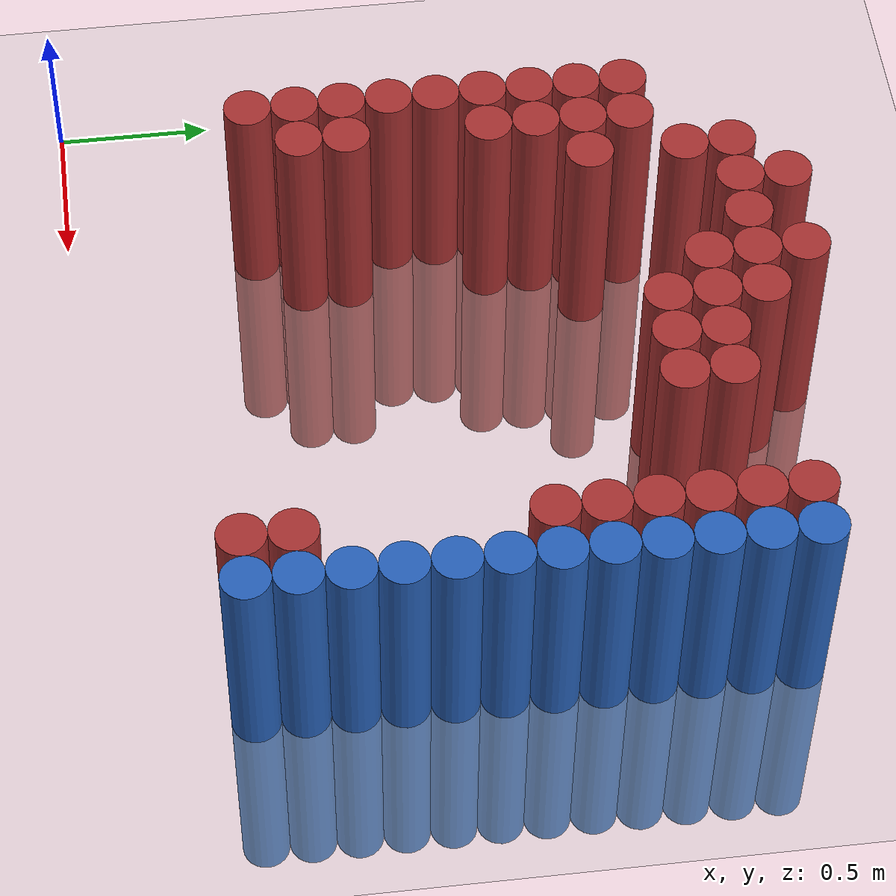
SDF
<sdf version="1.6">
 <world name="default">
  <model name="ground_plane">
   <static>1</static>
   <link name="link">
    <collision name="collision">
     <geometry><plane><normal>0 0 1</normal><size>100 100</size></plane></geometry>
     <surface><friction><ode><mu>100</mu><mu2>50</mu2></ode></friction></surface>
    </collision>
    <visual name="visual">
     <cast_shadows>0</cast_shadows>
     <geometry><plane><normal>0 0 1</normal><size>100 100</size></plane></geometry>
     <material>
      <script><uri>file://media/materials/scripts/gazebo.material</uri><name>Gazebo/Grey</name></script>
     </material>
    </visual>
   </link>
  </model>
  <model name="unit_cylinder_152">
   <static>1</static>
   <pose>0.625000 0.625000 0.000000 0.000000 0.000000 0.000000</pose>
   <link name="link">
    <inertial>
     <mass>1</mass>
     <inertia><ixx>0.145833</ixx><ixy>0</ixy><ixz>0</ixz><iyy>0.145833</iyy><iyz>0</iyz><izz>0.125</izz></inertia>
    </inertial>
    <collision name="collision">
     <geometry><cylinder><radius>0.075000</radius><length>1.5</length></cylinder></geometry>
    </collision>
    <visual name="visual">
     <geometry><cylinder><radius>0.075000</radius><length>1.5</length></cylinder></geometry>
     <material>
      <ambient>0.648000 0.192000 0.192000 1</ambient>
      <diffuse>0.648000 0.192000 0.192000 1</diffuse>
     </material>
     <material>
      <script><name>Gazebo/Grey</name><uri>file://media/materials/scripts/gazebo.material</uri></script>
     </material>
    </visual>
   </link>
  </model>
  <model name="unit_cylinder_153">
   <static>1</static>
   <pose>0.625000 0.775000 0.000000 0.000000 0.000000 0.000000</pose>
   <link name="link">
    <inertial>
     <mass>1</mass>
     <inertia><ixx>0.145833</ixx><ixy>0</ixy><ixz>0</ixz><iyy>0.145833</iyy><iyz>0</iyz><izz>0.125</izz></inertia>
    </inertial>
    <collision name="collision">
     <geometry><cylinder><radius>0.075000</radius><length>1.5</length></cylinder></geometry>
    </collision>
    <visual name="visual">
     <geometry><cylinder><radius>0.075000</radius><length>1.5</length></cylinder></geometry>
     <material>
      <ambient>0.648000 0.192000 0.192000 1</ambient>
      <diffuse>0.648000 0.192000 0.192000 1</diffuse>
     </material>
     <material>
      <script><name>Gazebo/Grey</name><uri>file://media/materials/scripts/gazebo.material</uri></script>
     </material>
    </visual>
   </link>
  </model>
  <model name="unit_cylinder_154">
   <static>1</static>
   <pose>0.625000 0.925000 0.000000 0.000000 0.000000 0.000000</pose>
   <link name="link">
    <inertial>
     <mass>1</mass>
     <inertia><ixx>0.145833</ixx><ixy>0</ixy><ixz>0</ixz><iyy>0.145833</iyy><iyz>0</iyz><izz>0.125</izz></inertia>
    </inertial>
    <collision name="collision">
     <geometry><cylinder><radius>0.075000</radius><length>1.5</length></cylinder></geometry>
    </collision>
    <visual name="visual">
     <geometry><cylinder><radius>0.075000</radius><length>1.5</length></cylinder></geometry>
     <material>
      <ambient>0.648000 0.192000 0.192000 1</ambient>
      <diffuse>0.648000 0.192000 0.192000 1</diffuse>
     </material>
     <material>
      <script><name>Gazebo/Grey</name><uri>file://media/materials/scripts/gazebo.material</uri></script>
     </material>
    </visual>
   </link>
  </model>
  <model name="unit_cylinder_155">
   <static>1</static>
   <pose>0.625000 1.075000 0.000000 0.000000 0.000000 0.000000</pose>
   <link name="link">
    <inertial>
     <mass>1</mass>
     <inertia><ixx>0.145833</ixx><ixy>0</ixy><ixz>0</ixz><iyy>0.145833</iyy><iyz>0</iyz><izz>0.125</izz></inertia>
    </inertial>
    <collision name="collision">
     <geometry><cylinder><radius>0.075000</radius><length>1.5</length></cylinder></geometry>
    </collision>
    <visual name="visual">
     <geometry><cylinder><radius>0.075000</radius><length>1.5</length></cylinder></geometry>
     <material>
      <ambient>0.648000 0.192000 0.192000 1</ambient>
      <diffuse>0.648000 0.192000 0.192000 1</diffuse>
     </material>
     <material>
      <script><name>Gazebo/Grey</name><uri>file://media/materials/scripts/gazebo.material</uri></script>
     </material>
    </visual>
   </link>
  </model>
  <model name="unit_cylinder_156">
   <static>1</static>
   <pose>0.625000 1.225000 0.000000 0.000000 0.000000 0.000000</pose>
   <link name="link">
    <inertial>
     <mass>1</mass>
     <inertia><ixx>0.145833</ixx><ixy>0</ixy><ixz>0</ixz><iyy>0.145833</iyy><iyz>0</iyz><izz>0.125</izz></inertia>
    </inertial>
    <collision name="collision">
     <geometry><cylinder><radius>0.075000</radius><length>1.5</length></cylinder></geometry>
    </collision>
    <visual name="visual">
     <geometry><cylinder><radius>0.075000</radius><length>1.5</length></cylinder></geometry>
     <material>
      <ambient>0.648000 0.192000 0.192000 1</ambient>
      <diffuse>0.648000 0.192000 0.192000 1</diffuse>
     </material>
     <material>
      <script><name>Gazebo/Grey</name><uri>file://media/materials/scripts/gazebo.material</uri></script>
     </material>
    </visual>
   </link>
  </model>
  <model name="unit_cylinder_157">
   <static>1</static>
   <pose>0.625000 1.375000 0.000000 0.000000 0.000000 0.000000</pose>
   <link name="link">
    <inertial>
     <mass>1</mass>
     <inertia><ixx>0.145833</ixx><ixy>0</ixy><ixz>0</ixz><iyy>0.145833</iyy><iyz>0</iyz><izz>0.125</izz></inertia>
    </inertial>
    <collision name="collision">
     <geometry><cylinder><radius>0.075000</radius><length>1.5</length></cylinder></geometry>
    </collision>
    <visual name="visual">
     <geometry><cylinder><radius>0.075000</radius><length>1.5</length></cylinder></geometry>
     <material>
      <ambient>0.648000 0.192000 0.192000 1</ambient>
      <diffuse>0.648000 0.192000 0.192000 1</diffuse>
     </material>
     <material>
      <script><name>Gazebo/Grey</name><uri>file://media/materials/scripts/gazebo.material</uri></script>
     </material>
    </visual>
   </link>
  </model>
  <model name="unit_cylinder_158">
   <static>1</static>
   <pose>0.625000 1.525000 0.000000 0.000000 0.000000 0.000000</pose>
   <link name="link">
    <inertial>
     <mass>1</mass>
     <inertia><ixx>0.145833</ixx><ixy>0</ixy><ixz>0</ixz><iyy>0.145833</iyy><iyz>0</iyz><izz>0.125</izz></inertia>
    </inertial>
    <collision name="collision">
     <geometry><cylinder><radius>0.075000</radius><length>1.5</length></cylinder></geometry>
    </collision>
    <visual name="visual">
     <geometry><cylinder><radius>0.075000</radius><length>1.5</length></cylinder></geometry>
     <material>
      <ambient>0.648000 0.192000 0.192000 1</ambient>
      <diffuse>0.648000 0.192000 0.192000 1</diffuse>
     </material>
     <material>
      <script><name>Gazebo/Grey</name><uri>file://media/materials/scripts/gazebo.material</uri></script>
     </material>
    </visual>
   </link>
  </model>
  <model name="unit_cylinder_159">
   <static>1</static>
   <pose>0.625000 1.675000 0.000000 0.000000 0.000000 0.000000</pose>
   <link name="link">
    <inertial>
     <mass>1</mass>
     <inertia><ixx>0.145833</ixx><ixy>0</ixy><ixz>0</ixz><iyy>0.145833</iyy><iyz>0</iyz><izz>0.125</izz></inertia>
    </inertial>
    <collision name="collision">
     <geometry><cylinder><radius>0.075000</radius><length>1.5</length></cylinder></geometry>
    </collision>
    <visual name="visual">
     <geometry><cylinder><radius>0.075000</radius><length>1.5</length></cylinder></geometry>
     <material>
      <ambient>0.648000 0.192000 0.192000 1</ambient>
      <diffuse>0.648000 0.192000 0.192000 1</diffuse>
     </material>
     <material>
      <script><name>Gazebo/Grey</name><uri>file://media/materials/scripts/gazebo.material</uri></script>
     </material>
    </visual>
   </link>
  </model>
  <model name="unit_cylinder_160">
   <static>1</static>
   <pose>0.625000 1.825000 0.000000 0.000000 0.000000 0.000000</pose>
   <link name="link">
    <inertial>
     <mass>1</mass>
     <inertia><ixx>0.145833</ixx><ixy>0</ixy><ixz>0</ixz><iyy>0.145833</iyy><iyz>0</iyz><izz>0.125</izz></inertia>
    </inertial>
    <collision name="collision">
     <geometry><cylinder><radius>0.075000</radius><length>1.5</length></cylinder></geometry>
    </collision>
    <visual name="visual">
     <geometry><cylinder><radius>0.075000</radius><length>1.5</length></cylinder></geometry>
     <material>
      <ambient>0.648000 0.192000 0.192000 1</ambient>
      <diffuse>0.648000 0.192000 0.192000 1</diffuse>
     </material>
     <material>
      <script><name>Gazebo/Grey</name><uri>file://media/materials/scripts/gazebo.material</uri></script>
     </material>
    </visual>
   </link>
  </model>
  <model name="unit_cylinder_161">
   <static>1</static>
   <pose>0.775000 0.775000 0.000000 0.000000 0.000000 0.000000</pose>
   <link name="link">
    <inertial>
     <mass>1</mass>
     <inertia><ixx>0.145833</ixx><ixy>0</ixy><ixz>0</ixz><iyy>0.145833</iyy><iyz>0</iyz><izz>0.125</izz></inertia>
    </inertial>
    <collision name="collision">
     <geometry><cylinder><radius>0.075000</radius><length>1.5</length></cylinder></geometry>
    </collision>
    <visual name="visual">
     <geometry><cylinder><radius>0.075000</radius><length>1.5</length></cylinder></geometry>
     <material>
      <ambient>0.648000 0.192000 0.192000 1</ambient>
      <diffuse>0.648000 0.192000 0.192000 1</diffuse>
     </material>
     <material>
      <script><name>Gazebo/Grey</name><uri>file://media/materials/scripts/gazebo.material</uri></script>
     </material>
    </visual>
   </link>
  </model>
  <model name="unit_cylinder_162">
   <static>1</static>
   <pose>0.775000 0.925000 0.000000 0.000000 0.000000 0.000000</pose>
   <link name="link">
    <inertial>
     <mass>1</mass>
     <inertia><ixx>0.145833</ixx><ixy>0</ixy><ixz>0</ixz><iyy>0.145833</iyy><iyz>0</iyz><izz>0.125</izz></inertia>
    </inertial>
    <collision name="collision">
     <geometry><cylinder><radius>0.075000</radius><length>1.5</length></cylinder></geometry>
    </collision>
    <visual name="visual">
     <geometry><cylinder><radius>0.075000</radius><length>1.5</length></cylinder></geometry>
     <material>
      <ambient>0.648000 0.192000 0.192000 1</ambient>
      <diffuse>0.648000 0.192000 0.192000 1</diffuse>
     </material>
     <material>
      <script><name>Gazebo/Grey</name><uri>file://media/materials/scripts/gazebo.material</uri></script>
     </material>
    </visual>
   </link>
  </model>
  <model name="unit_cylinder_163">
   <static>1</static>
   <pose>0.775000 1.375000 0.000000 0.000000 0.000000 0.000000</pose>
   <link name="link">
    <inertial>
     <mass>1</mass>
     <inertia><ixx>0.145833</ixx><ixy>0</ixy><ixz>0</ixz><iyy>0.145833</iyy><iyz>0</iyz><izz>0.125</izz></inertia>
    </inertial>
    <collision name="collision">
     <geometry><cylinder><radius>0.075000</radius><length>1.5</length></cylinder></geometry>
    </collision>
    <visual name="visual">
     <geometry><cylinder><radius>0.075000</radius><length>1.5</length></cylinder></geometry>
     <material>
      <ambient>0.648000 0.192000 0.192000 1</ambient>
      <diffuse>0.648000 0.192000 0.192000 1</diffuse>
     </material>
     <material>
      <script><name>Gazebo/Grey</name><uri>file://media/materials/scripts/gazebo.material</uri></script>
     </material>
    </visual>
   </link>
  </model>
  <model name="unit_cylinder_164">
   <static>1</static>
   <pose>0.775000 1.525000 0.000000 0.000000 0.000000 0.000000</pose>
   <link name="link">
    <inertial>
     <mass>1</mass>
     <inertia><ixx>0.145833</ixx><ixy>0</ixy><ixz>0</ixz><iyy>0.145833</iyy><iyz>0</iyz><izz>0.125</izz></inertia>
    </inertial>
    <collision name="collision">
     <geometry><cylinder><radius>0.075000</radius><length>1.5</length></cylinder></geometry>
    </collision>
    <visual name="visual">
     <geometry><cylinder><radius>0.075000</radius><length>1.5</length></cylinder></geometry>
     <material>
      <ambient>0.648000 0.192000 0.192000 1</ambient>
      <diffuse>0.648000 0.192000 0.192000 1</diffuse>
     </material>
     <material>
      <script><name>Gazebo/Grey</name><uri>file://media/materials/scripts/gazebo.material</uri></script>
     </material>
    </visual>
   </link>
  </model>
  <model name="unit_cylinder_165">
   <static>1</static>
   <pose>0.775000 1.675000 0.000000 0.000000 0.000000 0.000000</pose>
   <link name="link">
    <inertial>
     <mass>1</mass>
     <inertia><ixx>0.145833</ixx><ixy>0</ixy><ixz>0</ixz><iyy>0.145833</iyy><iyz>0</iyz><izz>0.125</izz></inertia>
    </inertial>
    <collision name="collision">
     <geometry><cylinder><radius>0.075000</radius><length>1.5</length></cylinder></geometry>
    </collision>
    <visual name="visual">
     <geometry><cylinder><radius>0.075000</radius><length>1.5</length></cylinder></geometry>
     <material>
      <ambient>0.648000 0.192000 0.192000 1</ambient>
      <diffuse>0.648000 0.192000 0.192000 1</diffuse>
     </material>
     <material>
      <script><name>Gazebo/Grey</name><uri>file://media/materials/scripts/gazebo.material</uri></script>
     </material>
    </visual>
   </link>
  </model>
  <model name="unit_cylinder_166">
   <static>1</static>
   <pose>0.775000 1.825000 0.000000 0.000000 0.000000 0.000000</pose>
   <link name="link">
    <inertial>
     <mass>1</mass>
     <inertia><ixx>0.145833</ixx><ixy>0</ixy><ixz>0</ixz><iyy>0.145833</iyy><iyz>0</iyz><izz>0.125</izz></inertia>
    </inertial>
    <collision name="collision">
     <geometry><cylinder><radius>0.075000</radius><length>1.5</length></cylinder></geometry>
    </collision>
    <visual name="visual">
     <geometry><cylinder><radius>0.075000</radius><length>1.5</length></cylinder></geometry>
     <material>
      <ambient>0.648000 0.192000 0.192000 1</ambient>
      <diffuse>0.648000 0.192000 0.192000 1</diffuse>
     </material>
     <material>
      <script><name>Gazebo/Grey</name><uri>file://media/materials/scripts/gazebo.material</uri></script>
     </material>
    </visual>
   </link>
  </model>
  <model name="unit_cylinder_167">
   <static>1</static>
   <pose>0.925000 1.675000 0.000000 0.000000 0.000000 0.000000</pose>
   <link name="link">
    <inertial>
     <mass>1</mass>
     <inertia><ixx>0.145833</ixx><ixy>0</ixy><ixz>0</ixz><iyy>0.145833</iyy><iyz>0</iyz><izz>0.125</izz></inertia>
    </inertial>
    <collision name="collision">
     <geometry><cylinder><radius>0.075000</radius><length>1.5</length></cylinder></geometry>
    </collision>
    <visual name="visual">
     <geometry><cylinder><radius>0.075000</radius><length>1.5</length></cylinder></geometry>
     <material>
      <ambient>0.648000 0.192000 0.192000 1</ambient>
      <diffuse>0.648000 0.192000 0.192000 1</diffuse>
     </material>
     <material>
      <script><name>Gazebo/Grey</name><uri>file://media/materials/scripts/gazebo.material</uri></script>
     </material>
    </visual>
   </link>
  </model>
  <model name="unit_cylinder_168">
   <static>1</static>
   <pose>0.925000 1.975000 0.000000 0.000000 0.000000 0.000000</pose>
   <link name="link">
    <inertial>
     <mass>1</mass>
     <inertia><ixx>0.145833</ixx><ixy>0</ixy><ixz>0</ixz><iyy>0.145833</iyy><iyz>0</iyz><izz>0.125</izz></inertia>
    </inertial>
    <collision name="collision">
     <geometry><cylinder><radius>0.075000</radius><length>1.5</length></cylinder></geometry>
    </collision>
    <visual name="visual">
     <geometry><cylinder><radius>0.075000</radius><length>1.5</length></cylinder></geometry>
     <material>
      <ambient>0.648000 0.192000 0.192000 1</ambient>
      <diffuse>0.648000 0.192000 0.192000 1</diffuse>
     </material>
     <material>
      <script><name>Gazebo/Grey</name><uri>file://media/materials/scripts/gazebo.material</uri></script>
     </material>
    </visual>
   </link>
  </model>
  <model name="unit_cylinder_169">
   <static>1</static>
   <pose>0.925000 2.125000 0.000000 0.000000 0.000000 0.000000</pose>
   <link name="link">
    <inertial>
     <mass>1</mass>
     <inertia><ixx>0.145833</ixx><ixy>0</ixy><ixz>0</ixz><iyy>0.145833</iyy><iyz>0</iyz><izz>0.125</izz></inertia>
    </inertial>
    <collision name="collision">
     <geometry><cylinder><radius>0.075000</radius><length>1.5</length></cylinder></geometry>
    </collision>
    <visual name="visual">
     <geometry><cylinder><radius>0.075000</radius><length>1.5</length></cylinder></geometry>
     <material>
      <ambient>0.648000 0.192000 0.192000 1</ambient>
      <diffuse>0.648000 0.192000 0.192000 1</diffuse>
     </material>
     <material>
      <script><name>Gazebo/Grey</name><uri>file://media/materials/scripts/gazebo.material</uri></script>
     </material>
    </visual>
   </link>
  </model>
  <model name="unit_cylinder_170">
   <static>1</static>
   <pose>1.075000 2.125000 0.000000 0.000000 0.000000 0.000000</pose>
   <link name="link">
    <inertial>
     <mass>1</mass>
     <inertia><ixx>0.145833</ixx><ixy>0</ixy><ixz>0</ixz><iyy>0.145833</iyy><iyz>0</iyz><izz>0.125</izz></inertia>
    </inertial>
    <collision name="collision">
     <geometry><cylinder><radius>0.075000</radius><length>1.5</length></cylinder></geometry>
    </collision>
    <visual name="visual">
     <geometry><cylinder><radius>0.075000</radius><length>1.5</length></cylinder></geometry>
     <material>
      <ambient>0.648000 0.192000 0.192000 1</ambient>
      <diffuse>0.648000 0.192000 0.192000 1</diffuse>
     </material>
     <material>
      <script><name>Gazebo/Grey</name><uri>file://media/materials/scripts/gazebo.material</uri></script>
     </material>
    </visual>
   </link>
  </model>
  <model name="unit_cylinder_171">
   <static>1</static>
   <pose>1.075000 2.275000 0.000000 0.000000 0.000000 0.000000</pose>
   <link name="link">
    <inertial>
     <mass>1</mass>
     <inertia><ixx>0.145833</ixx><ixy>0</ixy><ixz>0</ixz><iyy>0.145833</iyy><iyz>0</iyz><izz>0.125</izz></inertia>
    </inertial>
    <collision name="collision">
     <geometry><cylinder><radius>0.075000</radius><length>1.5</length></cylinder></geometry>
    </collision>
    <visual name="visual">
     <geometry><cylinder><radius>0.075000</radius><length>1.5</length></cylinder></geometry>
     <material>
      <ambient>0.648000 0.192000 0.192000 1</ambient>
      <diffuse>0.648000 0.192000 0.192000 1</diffuse>
     </material>
     <material>
      <script><name>Gazebo/Grey</name><uri>file://media/materials/scripts/gazebo.material</uri></script>
     </material>
    </visual>
   </link>
  </model>
  <model name="unit_cylinder_178">
   <static>1</static>
   <pose>1.225000 2.125000 0.000000 0.000000 0.000000 0.000000</pose>
   <link name="link">
    <inertial>
     <mass>1</mass>
     <inertia><ixx>0.145833</ixx><ixy>0</ixy><ixz>0</ixz><iyy>0.145833</iyy><iyz>0</iyz><izz>0.125</izz></inertia>
    </inertial>
    <collision name="collision">
     <geometry><cylinder><radius>0.075000</radius><length>1.5</length></cylinder></geometry>
    </collision>
    <visual name="visual">
     <geometry><cylinder><radius>0.075000</radius><length>1.5</length></cylinder></geometry>
     <material>
      <ambient>0.648000 0.192000 0.192000 1</ambient>
      <diffuse>0.648000 0.192000 0.192000 1</diffuse>
     </material>
     <material>
      <script><name>Gazebo/Grey</name><uri>file://media/materials/scripts/gazebo.material</uri></script>
     </material>
    </visual>
   </link>
  </model>
  <model name="unit_cylinder_185">
   <static>1</static>
   <pose>1.375000 1.975000 0.000000 0.000000 0.000000 0.000000</pose>
   <link name="link">
    <inertial>
     <mass>1</mass>
     <inertia><ixx>0.145833</ixx><ixy>0</ixy><ixz>0</ixz><iyy>0.145833</iyy><iyz>0</iyz><izz>0.125</izz></inertia>
    </inertial>
    <collision name="collision">
     <geometry><cylinder><radius>0.075000</radius><length>1.5</length></cylinder></geometry>
    </collision>
    <visual name="visual">
     <geometry><cylinder><radius>0.075000</radius><length>1.5</length></cylinder></geometry>
     <material>
      <ambient>0.648000 0.192000 0.192000 1</ambient>
      <diffuse>0.648000 0.192000 0.192000 1</diffuse>
     </material>
     <material>
      <script><name>Gazebo/Grey</name><uri>file://media/materials/scripts/gazebo.material</uri></script>
     </material>
    </visual>
   </link>
  </model>
  <model name="unit_cylinder_186">
   <static>1</static>
   <pose>1.375000 2.125000 0.000000 0.000000 0.000000 0.000000</pose>
   <link name="link">
    <inertial>
     <mass>1</mass>
     <inertia><ixx>0.145833</ixx><ixy>0</ixy><ixz>0</ixz><iyy>0.145833</iyy><iyz>0</iyz><izz>0.125</izz></inertia>
    </inertial>
    <collision name="collision">
     <geometry><cylinder><radius>0.075000</radius><length>1.5</length></cylinder></geometry>
    </collision>
    <visual name="visual">
     <geometry><cylinder><radius>0.075000</radius><length>1.5</length></cylinder></geometry>
     <material>
      <ambient>0.648000 0.192000 0.192000 1</ambient>
      <diffuse>0.648000 0.192000 0.192000 1</diffuse>
     </material>
     <material>
      <script><name>Gazebo/Grey</name><uri>file://media/materials/scripts/gazebo.material</uri></script>
     </material>
    </visual>
   </link>
  </model>
  <model name="unit_cylinder_187">
   <static>1</static>
   <pose>1.375000 2.275000 0.000000 0.000000 0.000000 0.000000</pose>
   <link name="link">
    <inertial>
     <mass>1</mass>
     <inertia><ixx>0.145833</ixx><ixy>0</ixy><ixz>0</ixz><iyy>0.145833</iyy><iyz>0</iyz><izz>0.125</izz></inertia>
    </inertial>
    <collision name="collision">
     <geometry><cylinder><radius>0.075000</radius><length>1.5</length></cylinder></geometry>
    </collision>
    <visual name="visual">
     <geometry><cylinder><radius>0.075000</radius><length>1.5</length></cylinder></geometry>
     <material>
      <ambient>0.648000 0.192000 0.192000 1</ambient>
      <diffuse>0.648000 0.192000 0.192000 1</diffuse>
     </material>
     <material>
      <script><name>Gazebo/Grey</name><uri>file://media/materials/scripts/gazebo.material</uri></script>
     </material>
    </visual>
   </link>
  </model>
  <model name="unit_cylinder_191">
   <static>1</static>
   <pose>1.525000 1.825000 0.000000 0.000000 0.000000 0.000000</pose>
   <link name="link">
    <inertial>
     <mass>1</mass>
     <inertia><ixx>0.145833</ixx><ixy>0</ixy><ixz>0</ixz><iyy>0.145833</iyy><iyz>0</iyz><izz>0.125</izz></inertia>
    </inertial>
    <collision name="collision">
     <geometry><cylinder><radius>0.075000</radius><length>1.5</length></cylinder></geometry>
    </collision>
    <visual name="visual">
     <geometry><cylinder><radius>0.075000</radius><length>1.5</length></cylinder></geometry>
     <material>
      <ambient>0.648000 0.192000 0.192000 1</ambient>
      <diffuse>0.648000 0.192000 0.192000 1</diffuse>
     </material>
     <material>
      <script><name>Gazebo/Grey</name><uri>file://media/materials/scripts/gazebo.material</uri></script>
     </material>
    </visual>
   </link>
  </model>
  <model name="unit_cylinder_192">
   <static>1</static>
   <pose>1.525000 1.975000 0.000000 0.000000 0.000000 0.000000</pose>
   <link name="link">
    <inertial>
     <mass>1</mass>
     <inertia><ixx>0.145833</ixx><ixy>0</ixy><ixz>0</ixz><iyy>0.145833</iyy><iyz>0</iyz><izz>0.125</izz></inertia>
    </inertial>
    <collision name="collision">
     <geometry><cylinder><radius>0.075000</radius><length>1.5</length></cylinder></geometry>
    </collision>
    <visual name="visual">
     <geometry><cylinder><radius>0.075000</radius><length>1.5</length></cylinder></geometry>
     <material>
      <ambient>0.648000 0.192000 0.192000 1</ambient>
      <diffuse>0.648000 0.192000 0.192000 1</diffuse>
     </material>
     <material>
      <script><name>Gazebo/Grey</name><uri>file://media/materials/scripts/gazebo.material</uri></script>
     </material>
    </visual>
   </link>
  </model>
  <model name="unit_cylinder_193">
   <static>1</static>
   <pose>1.525000 2.125000 0.000000 0.000000 0.000000 0.000000</pose>
   <link name="link">
    <inertial>
     <mass>1</mass>
     <inertia><ixx>0.145833</ixx><ixy>0</ixy><ixz>0</ixz><iyy>0.145833</iyy><iyz>0</iyz><izz>0.125</izz></inertia>
    </inertial>
    <collision name="collision">
     <geometry><cylinder><radius>0.075000</radius><length>1.5</length></cylinder></geometry>
    </collision>
    <visual name="visual">
     <geometry><cylinder><radius>0.075000</radius><length>1.5</length></cylinder></geometry>
     <material>
      <ambient>0.648000 0.192000 0.192000 1</ambient>
      <diffuse>0.648000 0.192000 0.192000 1</diffuse>
     </material>
     <material>
      <script><name>Gazebo/Grey</name><uri>file://media/materials/scripts/gazebo.material</uri></script>
     </material>
    </visual>
   </link>
  </model>
  <model name="unit_cylinder_194">
   <static>1</static>
   <pose>1.675000 1.825000 0.000000 0.000000 0.000000 0.000000</pose>
   <link name="link">
    <inertial>
     <mass>1</mass>
     <inertia><ixx>0.145833</ixx><ixy>0</ixy><ixz>0</ixz><iyy>0.145833</iyy><iyz>0</iyz><izz>0.125</izz></inertia>
    </inertial>
    <collision name="collision">
     <geometry><cylinder><radius>0.075000</radius><length>1.5</length></cylinder></geometry>
    </collision>
    <visual name="visual">
     <geometry><cylinder><radius>0.075000</radius><length>1.5</length></cylinder></geometry>
     <material>
      <ambient>0.648000 0.192000 0.192000 1</ambient>
      <diffuse>0.648000 0.192000 0.192000 1</diffuse>
     </material>
     <material>
      <script><name>Gazebo/Grey</name><uri>file://media/materials/scripts/gazebo.material</uri></script>
     </material>
    </visual>
   </link>
  </model>
  <model name="unit_cylinder_195">
   <static>1</static>
   <pose>1.675000 1.975000 0.000000 0.000000 0.000000 0.000000</pose>
   <link name="link">
    <inertial>
     <mass>1</mass>
     <inertia><ixx>0.145833</ixx><ixy>0</ixy><ixz>0</ixz><iyy>0.145833</iyy><iyz>0</iyz><izz>0.125</izz></inertia>
    </inertial>
    <collision name="collision">
     <geometry><cylinder><radius>0.075000</radius><length>1.5</length></cylinder></geometry>
    </collision>
    <visual name="visual">
     <geometry><cylinder><radius>0.075000</radius><length>1.5</length></cylinder></geometry>
     <material>
      <ambient>0.648000 0.192000 0.192000 1</ambient>
      <diffuse>0.648000 0.192000 0.192000 1</diffuse>
     </material>
     <material>
      <script><name>Gazebo/Grey</name><uri>file://media/materials/scripts/gazebo.material</uri></script>
     </material>
    </visual>
   </link>
  </model>
  <model name="unit_cylinder_196">
   <static>1</static>
   <pose>1.825000 1.825000 0.000000 0.000000 0.000000 0.000000</pose>
   <link name="link">
    <inertial>
     <mass>1</mass>
     <inertia><ixx>0.145833</ixx><ixy>0</ixy><ixz>0</ixz><iyy>0.145833</iyy><iyz>0</iyz><izz>0.125</izz></inertia>
    </inertial>
    <collision name="collision">
     <geometry><cylinder><radius>0.075000</radius><length>1.5</length></cylinder></geometry>
    </collision>
    <visual name="visual">
     <geometry><cylinder><radius>0.075000</radius><length>1.5</length></cylinder></geometry>
     <material>
      <ambient>0.648000 0.192000 0.192000 1</ambient>
      <diffuse>0.648000 0.192000 0.192000 1</diffuse>
     </material>
     <material>
      <script><name>Gazebo/Grey</name><uri>file://media/materials/scripts/gazebo.material</uri></script>
     </material>
    </visual>
   </link>
  </model>
  <model name="unit_cylinder_197">
   <static>1</static>
   <pose>1.825000 1.975000 0.000000 0.000000 0.000000 0.000000</pose>
   <link name="link">
    <inertial>
     <mass>1</mass>
     <inertia><ixx>0.145833</ixx><ixy>0</ixy><ixz>0</ixz><iyy>0.145833</iyy><iyz>0</iyz><izz>0.125</izz></inertia>
    </inertial>
    <collision name="collision">
     <geometry><cylinder><radius>0.075000</radius><length>1.5</length></cylinder></geometry>
    </collision>
    <visual name="visual">
     <geometry><cylinder><radius>0.075000</radius><length>1.5</length></cylinder></geometry>
     <material>
      <ambient>0.648000 0.192000 0.192000 1</ambient>
      <diffuse>0.648000 0.192000 0.192000 1</diffuse>
     </material>
     <material>
      <script><name>Gazebo/Grey</name><uri>file://media/materials/scripts/gazebo.material</uri></script>
     </material>
    </visual>
   </link>
  </model>
  <model name="unit_cylinder_214">
   <static>1</static>
   <pose>2.275000 0.475000 0.000000 0.000000 0.000000 0.000000</pose>
   <link name="link">
    <inertial>
     <mass>1</mass>
     <inertia><ixx>0.145833</ixx><ixy>0</ixy><ixz>0</ixz><iyy>0.145833</iyy><iyz>0</iyz><izz>0.125</izz></inertia>
    </inertial>
    <collision name="collision">
     <geometry><cylinder><radius>0.075000</radius><length>1.5</length></cylinder></geometry>
    </collision>
    <visual name="visual">
     <geometry><cylinder><radius>0.075000</radius><length>1.5</length></cylinder></geometry>
     <material>
      <ambient>0.648000 0.192000 0.192000 1</ambient>
      <diffuse>0.648000 0.192000 0.192000 1</diffuse>
     </material>
     <material>
      <script><name>Gazebo/Grey</name><uri>file://media/materials/scripts/gazebo.material</uri></script>
     </material>
    </visual>
   </link>
  </model>
  <model name="unit_cylinder_215">
   <static>1</static>
   <pose>2.275000 0.625000 0.000000 0.000000 0.000000 0.000000</pose>
   <link name="link">
    <inertial>
     <mass>1</mass>
     <inertia><ixx>0.145833</ixx><ixy>0</ixy><ixz>0</ixz><iyy>0.145833</iyy><iyz>0</iyz><izz>0.125</izz></inertia>
    </inertial>
    <collision name="collision">
     <geometry><cylinder><radius>0.075000</radius><length>1.5</length></cylinder></geometry>
    </collision>
    <visual name="visual">
     <geometry><cylinder><radius>0.075000</radius><length>1.5</length></cylinder></geometry>
     <material>
      <ambient>0.648000 0.192000 0.192000 1</ambient>
      <diffuse>0.648000 0.192000 0.192000 1</diffuse>
     </material>
     <material>
      <script><name>Gazebo/Grey</name><uri>file://media/materials/scripts/gazebo.material</uri></script>
     </material>
    </visual>
   </link>
  </model>
  <model name="unit_cylinder_216">
   <static>1</static>
   <pose>2.275000 1.375000 0.000000 0.000000 0.000000 0.000000</pose>
   <link name="link">
    <inertial>
     <mass>1</mass>
     <inertia><ixx>0.145833</ixx><ixy>0</ixy><ixz>0</ixz><iyy>0.145833</iyy><iyz>0</iyz><izz>0.125</izz></inertia>
    </inertial>
    <collision name="collision">
     <geometry><cylinder><radius>0.075000</radius><length>1.5</length></cylinder></geometry>
    </collision>
    <visual name="visual">
     <geometry><cylinder><radius>0.075000</radius><length>1.5</length></cylinder></geometry>
     <material>
      <ambient>0.648000 0.192000 0.192000 1</ambient>
      <diffuse>0.648000 0.192000 0.192000 1</diffuse>
     </material>
     <material>
      <script><name>Gazebo/Grey</name><uri>file://media/materials/scripts/gazebo.material</uri></script>
     </material>
    </visual>
   </link>
  </model>
  <model name="unit_cylinder_217">
   <static>1</static>
   <pose>2.275000 1.525000 0.000000 0.000000 0.000000 0.000000</pose>
   <link name="link">
    <inertial>
     <mass>1</mass>
     <inertia><ixx>0.145833</ixx><ixy>0</ixy><ixz>0</ixz><iyy>0.145833</iyy><iyz>0</iyz><izz>0.125</izz></inertia>
    </inertial>
    <collision name="collision">
     <geometry><cylinder><radius>0.075000</radius><length>1.5</length></cylinder></geometry>
    </collision>
    <visual name="visual">
     <geometry><cylinder><radius>0.075000</radius><length>1.5</length></cylinder></geometry>
     <material>
      <ambient>0.648000 0.192000 0.192000 1</ambient>
      <diffuse>0.648000 0.192000 0.192000 1</diffuse>
     </material>
     <material>
      <script><name>Gazebo/Grey</name><uri>file://media/materials/scripts/gazebo.material</uri></script>
     </material>
    </visual>
   </link>
  </model>
  <model name="unit_cylinder_218">
   <static>1</static>
   <pose>2.275000 1.675000 0.000000 0.000000 0.000000 0.000000</pose>
   <link name="link">
    <inertial>
     <mass>1</mass>
     <inertia><ixx>0.145833</ixx><ixy>0</ixy><ixz>0</ixz><iyy>0.145833</iyy><iyz>0</iyz><izz>0.125</izz></inertia>
    </inertial>
    <collision name="collision">
     <geometry><cylinder><radius>0.075000</radius><length>1.5</length></cylinder></geometry>
    </collision>
    <visual name="visual">
     <geometry><cylinder><radius>0.075000</radius><length>1.5</length></cylinder></geometry>
     <material>
      <ambient>0.648000 0.192000 0.192000 1</ambient>
      <diffuse>0.648000 0.192000 0.192000 1</diffuse>
     </material>
     <material>
      <script><name>Gazebo/Grey</name><uri>file://media/materials/scripts/gazebo.material</uri></script>
     </material>
    </visual>
   </link>
  </model>
  <model name="unit_cylinder_219">
   <static>1</static>
   <pose>2.275000 1.825000 0.000000 0.000000 0.000000 0.000000</pose>
   <link name="link">
    <inertial>
     <mass>1</mass>
     <inertia><ixx>0.145833</ixx><ixy>0</ixy><ixz>0</ixz><iyy>0.145833</iyy><iyz>0</iyz><izz>0.125</izz></inertia>
    </inertial>
    <collision name="collision">
     <geometry><cylinder><radius>0.075000</radius><length>1.5</length></cylinder></geometry>
    </collision>
    <visual name="visual">
     <geometry><cylinder><radius>0.075000</radius><length>1.5</length></cylinder></geometry>
     <material>
      <ambient>0.648000 0.192000 0.192000 1</ambient>
      <diffuse>0.648000 0.192000 0.192000 1</diffuse>
     </material>
     <material>
      <script><name>Gazebo/Grey</name><uri>file://media/materials/scripts/gazebo.material</uri></script>
     </material>
    </visual>
   </link>
  </model>
  <model name="unit_cylinder_220">
   <static>1</static>
   <pose>2.275000 1.975000 0.000000 0.000000 0.000000 0.000000</pose>
   <link name="link">
    <inertial>
     <mass>1</mass>
     <inertia><ixx>0.145833</ixx><ixy>0</ixy><ixz>0</ixz><iyy>0.145833</iyy><iyz>0</iyz><izz>0.125</izz></inertia>
    </inertial>
    <collision name="collision">
     <geometry><cylinder><radius>0.075000</radius><length>1.5</length></cylinder></geometry>
    </collision>
    <visual name="visual">
     <geometry><cylinder><radius>0.075000</radius><length>1.5</length></cylinder></geometry>
     <material>
      <ambient>0.648000 0.192000 0.192000 1</ambient>
      <diffuse>0.648000 0.192000 0.192000 1</diffuse>
     </material>
     <material>
      <script><name>Gazebo/Grey</name><uri>file://media/materials/scripts/gazebo.material</uri></script>
     </material>
    </visual>
   </link>
  </model>
  <model name="unit_cylinder_221">
   <static>1</static>
   <pose>2.275000 2.125000 0.000000 0.000000 0.000000 0.000000</pose>
   <link name="link">
    <inertial>
     <mass>1</mass>
     <inertia><ixx>0.145833</ixx><ixy>0</ixy><ixz>0</ixz><iyy>0.145833</iyy><iyz>0</iyz><izz>0.125</izz></inertia>
    </inertial>
    <collision name="collision">
     <geometry><cylinder><radius>0.075000</radius><length>1.5</length></cylinder></geometry>
    </collision>
    <visual name="visual">
     <geometry><cylinder><radius>0.075000</radius><length>1.5</length></cylinder></geometry>
     <material>
      <ambient>0.648000 0.192000 0.192000 1</ambient>
      <diffuse>0.648000 0.192000 0.192000 1</diffuse>
     </material>
     <material>
      <script><name>Gazebo/Grey</name><uri>file://media/materials/scripts/gazebo.material</uri></script>
     </material>
    </visual>
   </link>
  </model>
  <model name="unit_cylinder_231">
   <static>1</static>
   <pose>2.425000 0.475000 0.000000 0.000000 0.000000 0.000000</pose>
   <link name="link">
    <inertial>
     <mass>1</mass>
     <inertia><ixx>0.145833</ixx><ixy>0</ixy><ixz>0</ixz><iyy>0.145833</iyy><iyz>0</iyz><izz>0.125</izz></inertia>
    </inertial>
    <collision name="collision">
     <geometry><cylinder><radius>0.075000</radius><length>1.5</length></cylinder></geometry>
    </collision>
    <visual name="visual">
     <geometry><cylinder><radius>0.075000</radius><length>1.5</length></cylinder></geometry>
     <material>
      <ambient>0.152000 0.379000 0.720000 1</ambient>
      <diffuse>0.152000 0.379000 0.720000 1</diffuse>
     </material>
     <material>
      <script><name>Gazebo/Grey</name><uri>file://media/materials/scripts/gazebo.material</uri></script>
     </material>
    </visual>
   </link>
  </model>
  <model name="unit_cylinder_232">
   <static>1</static>
   <pose>2.425000 0.625000 0.000000 0.000000 0.000000 0.000000</pose>
   <link name="link">
    <inertial>
     <mass>1</mass>
     <inertia><ixx>0.145833</ixx><ixy>0</ixy><ixz>0</ixz><iyy>0.145833</iyy><iyz>0</iyz><izz>0.125</izz></inertia>
    </inertial>
    <collision name="collision">
     <geometry><cylinder><radius>0.075000</radius><length>1.5</length></cylinder></geometry>
    </collision>
    <visual name="visual">
     <geometry><cylinder><radius>0.075000</radius><length>1.5</length></cylinder></geometry>
     <material>
      <ambient>0.152000 0.379000 0.720000 1</ambient>
      <diffuse>0.152000 0.379000 0.720000 1</diffuse>
     </material>
     <material>
      <script><name>Gazebo/Grey</name><uri>file://media/materials/scripts/gazebo.material</uri></script>
     </material>
    </visual>
   </link>
  </model>
  <model name="unit_cylinder_233">
   <static>1</static>
   <pose>2.425000 0.775000 0.000000 0.000000 0.000000 0.000000</pose>
   <link name="link">
    <inertial>
     <mass>1</mass>
     <inertia><ixx>0.145833</ixx><ixy>0</ixy><ixz>0</ixz><iyy>0.145833</iyy><iyz>0</iyz><izz>0.125</izz></inertia>
    </inertial>
    <collision name="collision">
     <geometry><cylinder><radius>0.075000</radius><length>1.5</length></cylinder></geometry>
    </collision>
    <visual name="visual">
     <geometry><cylinder><radius>0.075000</radius><length>1.5</length></cylinder></geometry>
     <material>
      <ambient>0.152000 0.379000 0.720000 1</ambient>
      <diffuse>0.152000 0.379000 0.720000 1</diffuse>
     </material>
     <material>
      <script><name>Gazebo/Grey</name><uri>file://media/materials/scripts/gazebo.material</uri></script>
     </material>
    </visual>
   </link>
  </model>
  <model name="unit_cylinder_234">
   <static>1</static>
   <pose>2.425000 0.925000 0.000000 0.000000 0.000000 0.000000</pose>
   <link name="link">
    <inertial>
     <mass>1</mass>
     <inertia><ixx>0.145833</ixx><ixy>0</ixy><ixz>0</ixz><iyy>0.145833</iyy><iyz>0</iyz><izz>0.125</izz></inertia>
    </inertial>
    <collision name="collision">
     <geometry><cylinder><radius>0.075000</radius><length>1.5</length></cylinder></geometry>
    </collision>
    <visual name="visual">
     <geometry><cylinder><radius>0.075000</radius><length>1.5</length></cylinder></geometry>
     <material>
      <ambient>0.152000 0.379000 0.720000 1</ambient>
      <diffuse>0.152000 0.379000 0.720000 1</diffuse>
     </material>
     <material>
      <script><name>Gazebo/Grey</name><uri>file://media/materials/scripts/gazebo.material</uri></script>
     </material>
    </visual>
   </link>
  </model>
  <model name="unit_cylinder_235">
   <static>1</static>
   <pose>2.425000 1.075000 0.000000 0.000000 0.000000 0.000000</pose>
   <link name="link">
    <inertial>
     <mass>1</mass>
     <inertia><ixx>0.145833</ixx><ixy>0</ixy><ixz>0</ixz><iyy>0.145833</iyy><iyz>0</iyz><izz>0.125</izz></inertia>
    </inertial>
    <collision name="collision">
     <geometry><cylinder><radius>0.075000</radius><length>1.5</length></cylinder></geometry>
    </collision>
    <visual name="visual">
     <geometry><cylinder><radius>0.075000</radius><length>1.5</length></cylinder></geometry>
     <material>
      <ambient>0.152000 0.379000 0.720000 1</ambient>
      <diffuse>0.152000 0.379000 0.720000 1</diffuse>
     </material>
     <material>
      <script><name>Gazebo/Grey</name><uri>file://media/materials/scripts/gazebo.material</uri></script>
     </material>
    </visual>
   </link>
  </model>
  <model name="unit_cylinder_236">
   <static>1</static>
   <pose>2.425000 1.225000 0.000000 0.000000 0.000000 0.000000</pose>
   <link name="link">
    <inertial>
     <mass>1</mass>
     <inertia><ixx>0.145833</ixx><ixy>0</ixy><ixz>0</ixz><iyy>0.145833</iyy><iyz>0</iyz><izz>0.125</izz></inertia>
    </inertial>
    <collision name="collision">
     <geometry><cylinder><radius>0.075000</radius><length>1.5</length></cylinder></geometry>
    </collision>
    <visual name="visual">
     <geometry><cylinder><radius>0.075000</radius><length>1.5</length></cylinder></geometry>
     <material>
      <ambient>0.152000 0.379000 0.720000 1</ambient>
      <diffuse>0.152000 0.379000 0.720000 1</diffuse>
     </material>
     <material>
      <script><name>Gazebo/Grey</name><uri>file://media/materials/scripts/gazebo.material</uri></script>
     </material>
    </visual>
   </link>
  </model>
  <model name="unit_cylinder_237">
   <static>1</static>
   <pose>2.425000 1.375000 0.000000 0.000000 0.000000 0.000000</pose>
   <link name="link">
    <inertial>
     <mass>1</mass>
     <inertia><ixx>0.145833</ixx><ixy>0</ixy><ixz>0</ixz><iyy>0.145833</iyy><iyz>0</iyz><izz>0.125</izz></inertia>
    </inertial>
    <collision name="collision">
     <geometry><cylinder><radius>0.075000</radius><length>1.5</length></cylinder></geometry>
    </collision>
    <visual name="visual">
     <geometry><cylinder><radius>0.075000</radius><length>1.5</length></cylinder></geometry>
     <material>
      <ambient>0.152000 0.379000 0.720000 1</ambient>
      <diffuse>0.152000 0.379000 0.720000 1</diffuse>
     </material>
     <material>
      <script><name>Gazebo/Grey</name><uri>file://media/materials/scripts/gazebo.material</uri></script>
     </material>
    </visual>
   </link>
  </model>
  <model name="unit_cylinder_238">
   <static>1</static>
   <pose>2.425000 1.525000 0.000000 0.000000 0.000000 0.000000</pose>
   <link name="link">
    <inertial>
     <mass>1</mass>
     <inertia><ixx>0.145833</ixx><ixy>0</ixy><ixz>0</ixz><iyy>0.145833</iyy><iyz>0</iyz><izz>0.125</izz></inertia>
    </inertial>
    <collision name="collision">
     <geometry><cylinder><radius>0.075000</radius><length>1.5</length></cylinder></geometry>
    </collision>
    <visual name="visual">
     <geometry><cylinder><radius>0.075000</radius><length>1.5</length></cylinder></geometry>
     <material>
      <ambient>0.152000 0.379000 0.720000 1</ambient>
      <diffuse>0.152000 0.379000 0.720000 1</diffuse>
     </material>
     <material>
      <script><name>Gazebo/Grey</name><uri>file://media/materials/scripts/gazebo.material</uri></script>
     </material>
    </visual>
   </link>
  </model>
  <model name="unit_cylinder_239">
   <static>1</static>
   <pose>2.425000 1.675000 0.000000 0.000000 0.000000 0.000000</pose>
   <link name="link">
    <inertial>
     <mass>1</mass>
     <inertia><ixx>0.145833</ixx><ixy>0</ixy><ixz>0</ixz><iyy>0.145833</iyy><iyz>0</iyz><izz>0.125</izz></inertia>
    </inertial>
    <collision name="collision">
     <geometry><cylinder><radius>0.075000</radius><length>1.5</length></cylinder></geometry>
    </collision>
    <visual name="visual">
     <geometry><cylinder><radius>0.075000</radius><length>1.5</length></cylinder></geometry>
     <material>
      <ambient>0.152000 0.379000 0.720000 1</ambient>
      <diffuse>0.152000 0.379000 0.720000 1</diffuse>
     </material>
     <material>
      <script><name>Gazebo/Grey</name><uri>file://media/materials/scripts/gazebo.material</uri></script>
     </material>
    </visual>
   </link>
  </model>
  <model name="unit_cylinder_240">
   <static>1</static>
   <pose>2.425000 1.825000 0.000000 0.000000 0.000000 0.000000</pose>
   <link name="link">
    <inertial>
     <mass>1</mass>
     <inertia><ixx>0.145833</ixx><ixy>0</ixy><ixz>0</ixz><iyy>0.145833</iyy><iyz>0</iyz><izz>0.125</izz></inertia>
    </inertial>
    <collision name="collision">
     <geometry><cylinder><radius>0.075000</radius><length>1.5</length></cylinder></geometry>
    </collision>
    <visual name="visual">
     <geometry><cylinder><radius>0.075000</radius><length>1.5</length></cylinder></geometry>
     <material>
      <ambient>0.152000 0.379000 0.720000 1</ambient>
      <diffuse>0.152000 0.379000 0.720000 1</diffuse>
     </material>
     <material>
      <script><name>Gazebo/Grey</name><uri>file://media/materials/scripts/gazebo.material</uri></script>
     </material>
    </visual>
   </link>
  </model>
  <model name="unit_cylinder_241">
   <static>1</static>
   <pose>2.425000 1.975000 0.000000 0.000000 0.000000 0.000000</pose>
   <link name="link">
    <inertial>
     <mass>1</mass>
     <inertia><ixx>0.145833</ixx><ixy>0</ixy><ixz>0</ixz><iyy>0.145833</iyy><iyz>0</iyz><izz>0.125</izz></inertia>
    </inertial>
    <collision name="collision">
     <geometry><cylinder><radius>0.075000</radius><length>1.5</length></cylinder></geometry>
    </collision>
    <visual name="visual">
     <geometry><cylinder><radius>0.075000</radius><length>1.5</length></cylinder></geometry>
     <material>
      <ambient>0.152000 0.379000 0.720000 1</ambient>
      <diffuse>0.152000 0.379000 0.720000 1</diffuse>
     </material>
     <material>
      <script><name>Gazebo/Grey</name><uri>file://media/materials/scripts/gazebo.material</uri></script>
     </material>
    </visual>
   </link>
  </model>
  <model name="unit_cylinder_242">
   <static>1</static>
   <pose>2.425000 2.125000 0.000000 0.000000 0.000000 0.000000</pose>
   <link name="link">
    <inertial>
     <mass>1</mass>
     <inertia><ixx>0.145833</ixx><ixy>0</ixy><ixz>0</ixz><iyy>0.145833</iyy><iyz>0</iyz><izz>0.125</izz></inertia>
    </inertial>
    <collision name="collision">
     <geometry><cylinder><radius>0.075000</radius><length>1.5</length></cylinder></geometry>
    </collision>
    <visual name="visual">
     <geometry><cylinder><radius>0.075000</radius><length>1.5</length></cylinder></geometry>
     <material>
      <ambient>0.152000 0.379000 0.720000 1</ambient>
      <diffuse>0.152000 0.379000 0.720000 1</diffuse>
     </material>
     <material>
      <script><name>Gazebo/Grey</name><uri>file://media/materials/scripts/gazebo.material</uri></script>
     </material>
    </visual>
   </link>
  </model>
 </world>
</sdf>
